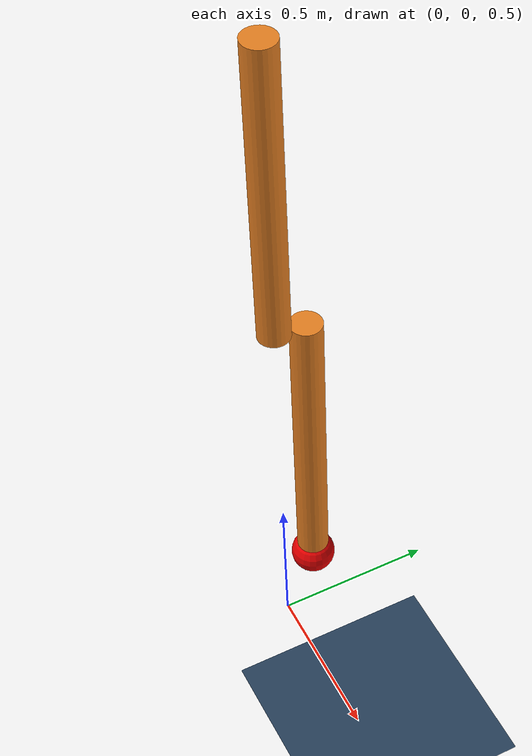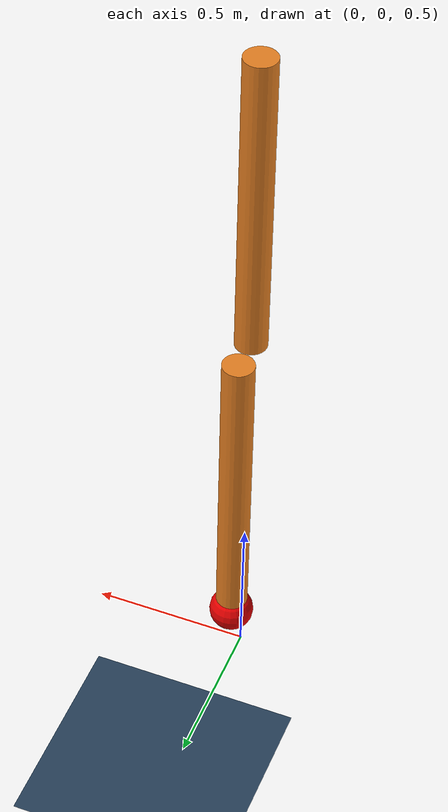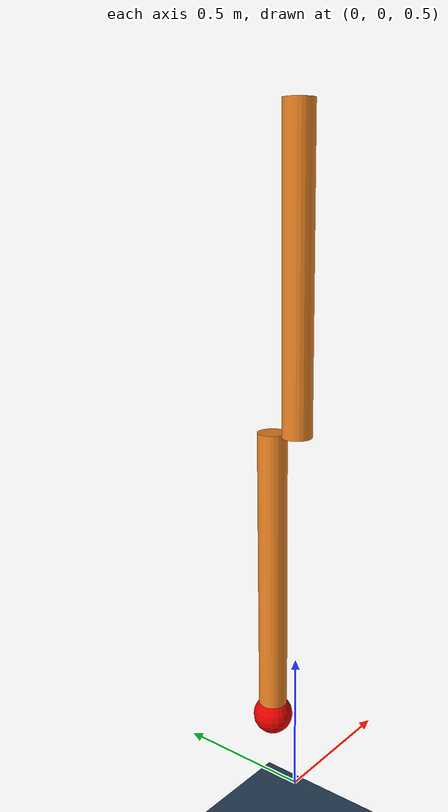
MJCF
<mujoco>
	<option timestep="0.0001" integrator="RK4" >
		<flag sensornoise="enable" energy="enable" contact="disable" />
	</option>
	<asset>
		<texture type="skybox" builtin="gradient" rgb1="0.3 0.5 0.7" rgb2="0 0 0" width="512"
			height="3072"/>
		<texture type="2d" name="groundplane" builtin="checker" mark="edge" rgb1="0.2 0.3 0.4"
			rgb2="0.1 0.2 0.3" markrgb="0.8 0.8 0.8" width="300" height="300"/>
		<material name="groundplane" texture="groundplane" texuniform="true" texrepeat="5 5"
			reflectance="0.2"/>
	</asset>
	<worldbody>
        <light pos="0 0 1.5" dir="0 0 -1" directional="true"/>
		<geom name="floor" size="0 0 0.05" type="plane" material="groundplane"/>
		<body pos="0 0 2.3" euler="0 180 0">
			<joint name="pin" type="hinge" axis = "0 -1 0" limited="true" range="-180 180" pos="0 0 -0.5"/>
			<geom type="cylinder" size="0.05 0.5" rgba="0.9 0.5 0.13 1" mass="3.5"/>
			<body pos="0 0.1 1" euler="0 0 0">
				<joint name="pin2" type="hinge" axis = "0 -1 0" limited="true" range="0 90" pos="0 0 -0.5"/>
				<geom type="cylinder" size="0.05 0.5" rgba="0.9 0.5 0.13 1" mass="1.5"/>
				<body pos="0 0 0.55" euler="0 0 0">
					<geom type="sphere" size="0.07" rgba="0.9 0 0 1" mass="0.4"/>
				</body>
			</body>
		</body>
		<body pos="0 0 2.3" euler="0 180 0">
			<joint name="pin3" type="hinge" axis = "0 -1 0" limited="true" range="-180 180" pos="0 0 -0.5"/>
			<geom type="cylinder" size="0.05 0.5" rgba="0.9 0.5 0.13 0.5" mass="3.5"/>
			<body pos="0 0.1 1" euler="0 0 0">
				<joint name="pin4" type="hinge" axis = "0 -1 0" limited="true" range="0 90" pos="0 0 -0.5"/>
				<geom type="cylinder" size="0.05 0.5" rgba="0.9 0.5 0.13 0.5" mass="1.5"/>
				<body pos="0 0 0.55" euler="0 0 0">
					<geom type="sphere" size="0.07" rgba="0 0.9 0 1" mass="0.4"/>
				</body>
			</body>
		</body>
	</worldbody>
	<actuator>
		<motor joint="pin" name="torque" gear="1" ctrllimited="true" ctrlrange="-100 100" />
		<position name="pservo1" joint="pin" kp="10" />
		<velocity name="vservo1" joint="pin" kv="10" />
		<motor joint="pin2" name="torque2" gear="1" ctrllimited="true" ctrlrange="-100 100" />
		<position name="pservo2" joint="pin2" kp="10" />
		<velocity name="vservo2" joint="pin2" kv="10" />

		<motor joint="pin3" name="torque3" gear="1" ctrllimited="true" ctrlrange="-100 100" />
		<position name="pservo3" joint="pin3" kp="10" />
		<velocity name="vservo3" joint="pin3" kv="10" />
		<motor joint="pin4" name="torque4" gear="1" ctrllimited="true" ctrlrange="-100 100" />
		<position name="pservo4" joint="pin4" kp="10" />
		<velocity name="vservo4" joint="pin4" kv="10" />
	</actuator>

</mujoco>
